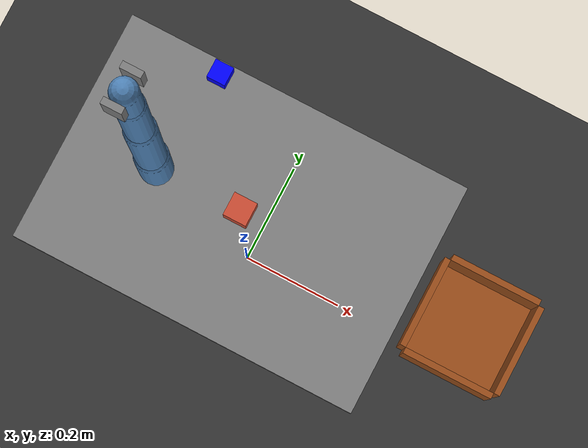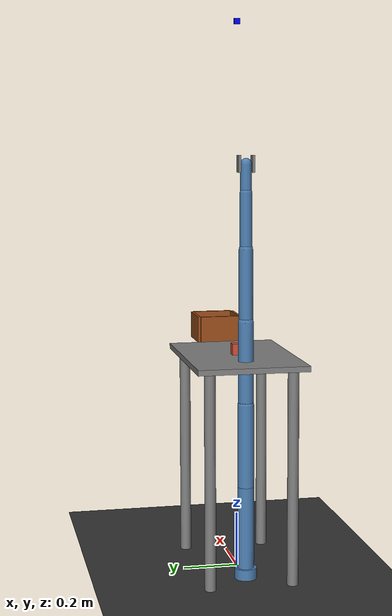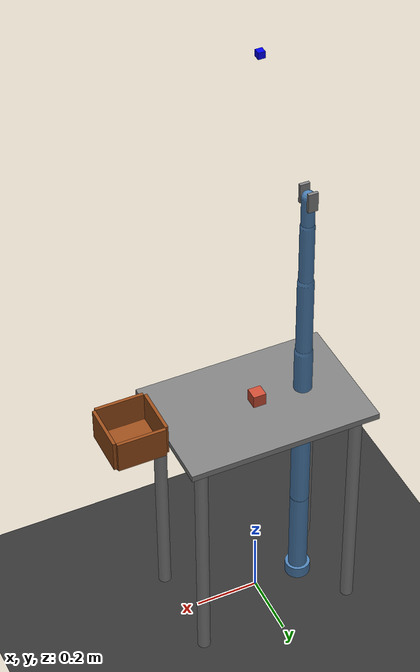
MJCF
<mujoco model="pick_and_place">

  <compiler angle="radian"/>

  <option timestep="0.002" integrator="RK4" gravity="0 0 -9.81" solver="Newton"
          noslip_iterations="5" noslip_tolerance="1e-10"/>

  <size nconmax="200" njmax="200"/>

  <!-- Defaults -->
  <default>
    <geom rgba="0.5 0.5 0.5 1" density="800" contype="2" conaffinity="2" friction="1.0 0.1 0.1"/>
    <joint limited="true" armature="0.01" frictionloss="0.05"/>
    <motor ctrllimited="true" ctrlrange="-1 1"/>
  </default>

  <asset>
    <texture type="skybox" builtin="gradient" rgb1="0.9 0.9 0.9" rgb2="0.5 0.5 0.5" width="256" height="256"/>
    <texture name="table_tex" type="2d" builtin="checker" rgb1="0.7 0.7 0.7" rgb2="0.3 0.3 0.3" width="256" height="256"/>
    <material name="table_mat" texture="table_tex" shininess="0.1"/>
    <material name="basket_mat" rgba="0.6 0.3 0.1 1" shininess="0.5"/>
    <material name="arm_mat" rgba="0.3 0.5 0.7 1" shininess="0.5"/>
    <material name="gripper_mat" rgba="0.5 0.5 0.5 1" shininess="0.8"/>
    <material name="object_mat" rgba="0.8 0.3 0.2 1" shininess="0.6"/>
    <material name="ground_mat" rgba="0.2 0.2 0.2 1"/>
  </asset>

  <worldbody>
    <!-- Ground plane -->
    <geom name="ground" type="plane" size="5 5 0.01" material="ground_mat"/>

    <!-- Table -->
    <body name="table" pos="0 0 0.79">
      <geom name="table_surface" type="box" size="0.3 0.2 0.01" material="table_mat"
            friction="1.0 0.1 0.1"/>
      <geom name="table_leg1" type="cylinder" size="0.02 0.4" pos="-0.25 -0.15 -0.4"/>
      <geom name="table_leg2" type="cylinder" size="0.02 0.4" pos="0.25 -0.15 -0.4"/>
      <geom name="table_leg3" type="cylinder" size="0.02 0.4" pos="-0.25 0.15 -0.4"/>
      <geom name="table_leg4" type="cylinder" size="0.02 0.4" pos="0.25 0.15 -0.4"/>
    </body>

    <!-- Basket -->
    <body name="basket" pos="0.4 0 0.8">
      <geom name="basket_bottom" type="box" size="0.075 0.075 0.005" material="basket_mat"
            pos="0 0 -0.005" friction="1.0 0.1 0.1"/>
      <geom name="basket_wall1" type="box" size="0.075 0.005 0.05" material="basket_mat"
            pos="0 0.08 0.045" friction="1.0 0.1 0.1"/>
      <geom name="basket_wall2" type="box" size="0.075 0.005 0.05" material="basket_mat"
            pos="0 -0.08 0.045" friction="1.0 0.1 0.1"/>
      <geom name="basket_wall3" type="box" size="0.005 0.075 0.05" material="basket_mat"
            pos="0.08 0 0.045" friction="1.0 0.1 0.1"/>
      <geom name="basket_wall4" type="box" size="0.005 0.075 0.05" material="basket_mat"
            pos="-0.08 0 0.045" friction="1.0 0.1 0.1"/>
    </body>

    <!-- Graspable Object -->
    <body name="object" pos="0 0 0.82">
      <freejoint name="object_free"/>
      <inertial pos="0 0 0" mass="0.1" diaginertia="0.0001 0.0001 0.0001"/>
      <geom name="object_geom" type="box" size="0.02 0.02 0.02" material="object_mat"
            friction="1.0 0.1 0.1"/>
    </body>

    <!-- 6-DOF KUKA iiwa Arm -->
    <body name="kuka_base" pos="-0.15 0 0.02">
      <geom name="base_geom" type="cylinder" size="0.04 0.02" material="arm_mat"/>

      <!-- Joint 1: Base rotation -->
      <body name="link1" pos="0 0 0.02">
        <joint name="joint1" type="hinge" axis="0 0 1"
               pos="0 0 0" limited="true" range="-3.14159 3.14159" damping="0.5"/>
        <geom name="link1_geom" type="capsule" size="0.03 0.15" pos="0 0 0.15" material="arm_mat"/>

        <!-- Joint 2: Shoulder -->
        <body name="link2" pos="0 0 0.3">
          <joint name="joint2" type="hinge" axis="0 -1 0"
                 pos="0 0 0" limited="true" range="-1.5708 1.5708" damping="0.5"/>
          <geom name="link2_geom" type="capsule" size="0.03 0.15" pos="0 0 0.15" material="arm_mat"/>

          <!-- Joint 3: Elbow -->
          <body name="link3" pos="0 0 0.3">
            <joint name="joint3" type="hinge" axis="0 1 0"
                   pos="0 0 0" limited="true" range="-3.14159 3.14159" damping="0.5"/>
            <geom name="link3_geom" type="capsule" size="0.028 0.15" pos="0 0 0.15" material="arm_mat"/>

            <!-- Joint 4: Wrist 1 -->
            <body name="link4" pos="0 0 0.3">
              <joint name="joint4" type="hinge" axis="0 1 0"
                     pos="0 0 0" limited="true" range="-3.14159 3.14159" damping="0.3"/>
              <geom name="link4_geom" type="capsule" size="0.025 0.13" pos="0 0 0.13" material="arm_mat"/>

              <!-- Joint 5: Wrist 2 -->
              <body name="link5" pos="0 0 0.26">
                <joint name="joint5" type="hinge" axis="0 -1 0"
                       pos="0 0 0" limited="true" range="-1.5708 1.5708" damping="0.3"/>
                <geom name="link5_geom" type="capsule" size="0.022 0.1" pos="0 0 0.1" material="arm_mat"/>

                <!-- Joint 6: Wrist 3 -->
                <body name="link6" pos="0 0 0.2">
                  <joint name="joint6" type="hinge" axis="0 0 1"
                         pos="0 0 0" limited="true" range="-3.14159 3.14159" damping="0.3"/>
                  <geom name="link6_geom" type="capsule" size="0.02 0.05" pos="0 0 0.05" material="arm_mat"/>

                  <!-- End effector -->
                  <body name="ee_mount" pos="0 0 0.1">
                    <!-- Gripper left finger -->
                    <body name="gripper_left" pos="0 -0.025 0">
                      <joint name="gripper_left_joint" type="slide" axis="0 -1 0"
                             pos="0 0 0" limited="true" range="-0.02 0.02" damping="0.5"/>
                      <geom name="gripper_left_geom" type="box" size="0.015 0.005 0.03" material="gripper_mat"/>
                    </body>
                    <!-- Gripper right finger -->
                    <body name="gripper_right" pos="0 0.025 0">
                      <joint name="gripper_right_joint" type="slide" axis="0 1 0"
                             pos="0 0 0" limited="true" range="-0.02 0.02" damping="0.5"/>
                      <geom name="gripper_right_geom" type="box" size="0.015 0.005 0.03" material="gripper_mat"/>
                    </body>
                  </body>
                </body>
              </body>
            </body>
          </body>
        </body>
      </body>
    </body>

    <!-- Overhead camera -->
    <body name="camera_frame" pos="0 0 2.0">
      <geom name="camera_housing" type="box" size="0.01 0.01 0.01" rgba="0 0 1 1"/>
      <camera name="overhead" mode="fixed" pos="0 0 0" euler="-1.5708 0 0" fovy="45"/>
    </body>
  </worldbody>

  <!-- Actuators -->
  <actuator>
    <motor joint="joint1" name="actuator_joint1" gear="50" ctrlrange="-1 1"/>
    <motor joint="joint2" name="actuator_joint2" gear="50" ctrlrange="-1 1"/>
    <motor joint="joint3" name="actuator_joint3" gear="50" ctrlrange="-1 1"/>
    <motor joint="joint4" name="actuator_joint4" gear="40" ctrlrange="-1 1"/>
    <motor joint="joint5" name="actuator_joint5" gear="40" ctrlrange="-1 1"/>
    <motor joint="joint6" name="actuator_joint6" gear="40" ctrlrange="-1 1"/>
    <motor joint="gripper_left_joint" name="actuator_gripper_left" gear="10" ctrlrange="-1 1"/>
    <motor joint="gripper_right_joint" name="actuator_gripper_right" gear="10" ctrlrange="-1 1"/>
  </actuator>

  <!-- Equality constraints for magnetic grasping -->
  <equality>
    <weld body1="ee_mount" body2="object" anchor="0 0 0" solref="0.02 1" solimp="0.9 0.95 0.001" active="false" name="grasp_weld"/>
  </equality>

</mujoco>
